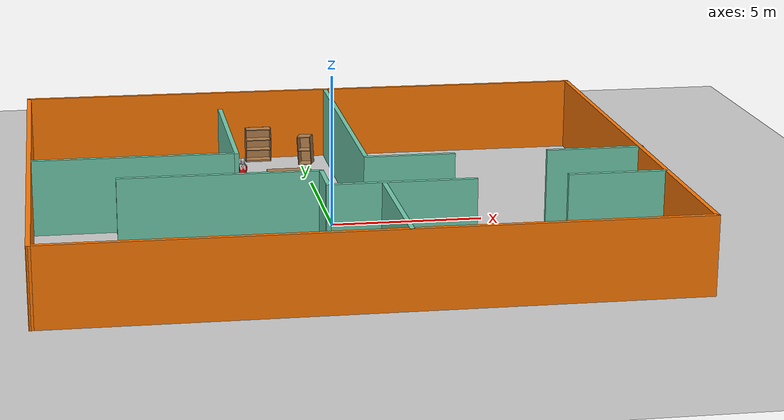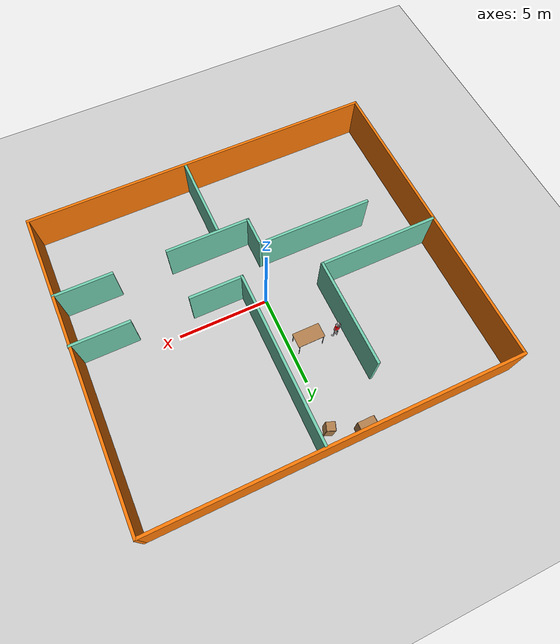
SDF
<sdf version="1.6">
 <world name="default">
  <light name="sun" type="directional">
   <pose>0 0 10 0 -0 0</pose>
   <diffuse>0.8 0.8 0.8 1</diffuse>
   <specular>0.2 0.2 0.2 1</specular>
   <attenuation>
    <range>1000</range>
    <constant>0.9</constant>
    <linear>0.01</linear>
    <quadratic>0.001</quadratic>
   </attenuation>
   <direction>-0.5 0.1 -0.9</direction>
  </light>
  <model name="ground_plane">
   <static>1</static>
   <link name="link">
    <collision name="collision">
     <geometry><plane><normal>0 0 1</normal><size>100 100</size></plane></geometry>
     <surface>
      <contact><collide_bitmask>65535</collide_bitmask></contact>
      <friction><ode><mu>100</mu><mu2>50</mu2></ode></friction>
     </surface>
    </collision>
    <visual name="visual">
     <cast_shadows>0</cast_shadows>
     <geometry><plane><normal>0 0 1</normal><size>100 100</size></plane></geometry>
     <material>
      <script><uri>file://media/materials/scripts/gazebo.material</uri><name>Gazebo/Grey</name></script>
     </material>
    </visual>
   </link>
  </model>
  <gravity>0 0 -9.8</gravity>
  <magnetic_field>6e-06 2.3e-05 -4.2e-05</magnetic_field>
  <atmosphere type="adiabatic"/>
  <physics name="default_physics" default="0" type="ode">
   <max_step_size>0.001</max_step_size>
   <real_time_factor>1</real_time_factor>
   <real_time_update_rate>1000</real_time_update_rate>
  </physics>
  <scene><ambient>0.4 0.4 0.4 1</ambient><background>0.7 0.7 0.7 1</background><shadows>1</shadows></scene>
  <audio><device>default</device></audio>
  <spherical_coordinates>
   <surface_model>EARTH_WGS84</surface_model>
   <latitude_deg>0</latitude_deg>
   <longitude_deg>0</longitude_deg>
   <elevation>0</elevation>
   <heading_deg>0</heading_deg>
  </spherical_coordinates>
  <model name="new_world">
   <pose>0.18496 0.05439 0 0 -0 0</pose>
   <link name="Wall_1">
    <collision name="Wall_1_Collision">
     <geometry><box><size>20 0.15 2.5</size></box></geometry>
     <pose>0 0 1.25 0 -0 0</pose>
    </collision>
    <visual name="Wall_1_Visual">
     <pose>0 0 1.25 0 -0 0</pose>
     <geometry><box><size>20 0.15 2.5</size></box></geometry>
     <material>
      <script><uri>file://media/materials/scripts/gazebo.material</uri><name>Gazebo/Grey</name></script>
      <ambient>0.996078 0.47451 0.0196078 1</ambient>
     </material>
     <meta><layer>0</layer></meta>
    </visual>
    <pose>-0.00542 -8.62551 0 0 -0 0</pose>
   </link>
   <link name="Wall_10">
    <collision name="Wall_10_Collision">
     <geometry><box><size>6 0.15 2.5</size></box></geometry>
     <pose>0 0 1.25 0 -0 0</pose>
    </collision>
    <visual name="Wall_10_Visual">
     <pose>0 0 1.25 0 -0 0</pose>
     <geometry><box><size>6 0.15 2.5</size></box></geometry>
     <material>
      <script><uri>file://media/materials/scripts/gazebo.material</uri><name>Gazebo/Grey</name></script>
      <ambient>0.435294 0.796078 0.67451 1</ambient>
     </material>
     <meta><layer>0</layer></meta>
    </visual>
    <pose>-3.27261 3.1413 0 0 -0 1.5708</pose>
   </link>
   <link name="Wall_12">
    <collision name="Wall_12_Collision">
     <geometry><box><size>9.5 0.15 2.5</size></box></geometry>
     <pose>0 0 1.25 0 -0 0</pose>
    </collision>
    <visual name="Wall_12_Visual">
     <pose>0 0 1.25 0 -0 0</pose>
     <geometry><box><size>9.5 0.15 2.5</size></box></geometry>
     <material>
      <script><uri>file://media/materials/scripts/gazebo.material</uri><name>Gazebo/Grey</name></script>
      <ambient>0.435294 0.796078 0.67451 1</ambient>
     </material>
     <meta><layer>0</layer></meta>
    </visual>
    <pose>0.807667 3.8347 0 0 -0 -1.5708</pose>
   </link>
   <link name="Wall_13">
    <collision name="Wall_13_Collision">
     <geometry><box><size>3 0.15 2.5</size></box></geometry>
     <pose>0 0 1.25 0 -0 0</pose>
    </collision>
    <visual name="Wall_13_Visual">
     <pose>0 0 1.25 0 -0 0</pose>
     <geometry><box><size>3 0.15 2.5</size></box></geometry>
     <material>
      <script><uri>file://media/materials/scripts/gazebo.material</uri><name>Gazebo/Grey</name></script>
      <ambient>0.435294 0.796078 0.67451 1</ambient>
     </material>
     <meta><layer>0</layer></meta>
    </visual>
    <pose>2.23267 -0.840302 0 0 -0 0</pose>
   </link>
   <link name="Wall_15">
    <collision name="Wall_15_Collision">
     <geometry><box><size>3.25 0.15 2.5</size></box></geometry>
     <pose>0 0 1.25 0 -0 0</pose>
    </collision>
    <visual name="Wall_15_Visual">
     <pose>0 0 1.25 0 -0 0</pose>
     <geometry><box><size>3.25 0.15 2.5</size></box></geometry>
     <material>
      <script><uri>file://media/materials/scripts/gazebo.material</uri><name>Gazebo/Grey</name></script>
      <ambient>0.435294 0.796078 0.67451 1</ambient>
     </material>
     <meta><layer>0</layer></meta>
    </visual>
    <pose>8.40063 -0.875996 0 0 -0 3.14159</pose>
   </link>
   <link name="Wall_17">
    <collision name="Wall_17_Collision">
     <geometry><box><size>3.25 0.15 2.5</size></box></geometry>
     <pose>0 0 1.25 0 -0 0</pose>
    </collision>
    <visual name="Wall_17_Visual">
     <pose>0 0 1.25 0 -0 0</pose>
     <geometry><box><size>3.25 0.15 2.5</size></box></geometry>
     <material>
      <script><uri>file://media/materials/scripts/gazebo.material</uri><name>Gazebo/Grey</name></script>
      <ambient>0.435294 0.796078 0.67451 1</ambient>
     </material>
     <meta><layer>0</layer></meta>
    </visual>
    <pose>8.36017 -3.7888 0 0 -0 3.14159</pose>
   </link>
   <link name="Wall_19">
    <collision name="Wall_19_Collision">
     <geometry><box><size>4.75 0.15 2.5</size></box></geometry>
     <pose>0 0 1.25 0 -0 0</pose>
    </collision>
    <visual name="Wall_19_Visual">
     <pose>0 0 1.25 0 -0 0</pose>
     <geometry><box><size>4.75 0.15 2.5</size></box></geometry>
     <material>
      <script><uri>file://media/materials/scripts/gazebo.material</uri><name>Gazebo/Grey</name></script>
      <ambient>0.435294 0.796078 0.67451 1</ambient>
     </material>
     <meta><layer>0</layer></meta>
    </visual>
    <pose>1.46092 -3.82925 0 0 -0 3.14159</pose>
   </link>
   <link name="Wall_2">
    <collision name="Wall_2_Collision">
     <geometry><box><size>17.4011 0.15 2.5</size></box></geometry>
     <pose>0 0 1.25 0 -0 0</pose>
    </collision>
    <visual name="Wall_2_Visual">
     <pose>0 0 1.25 0 -0 0</pose>
     <geometry><box><size>17.4011 0.15 2.5</size></box></geometry>
     <material>
      <script><uri>file://media/materials/scripts/gazebo.material</uri><name>Gazebo/Grey</name></script>
      <ambient>0.996078 0.47451 0.0196078 1</ambient>
     </material>
     <meta><layer>0</layer></meta>
    </visual>
    <pose>9.92019 5.3e-05 0 0 -0 1.57072</pose>
   </link>
   <link name="Wall_20">
    <collision name="Wall_20_Collision">
     <geometry><box><size>1.75 0.15 2.5</size></box></geometry>
     <pose>0 0 1.25 0 -0 0</pose>
    </collision>
    <visual name="Wall_20_Visual">
     <pose>0 0 1.25 0 -0 0</pose>
     <geometry><box><size>1.75 0.15 2.5</size></box></geometry>
     <material>
      <script><uri>file://media/materials/scripts/gazebo.material</uri><name>Gazebo/Grey</name></script>
      <ambient>0.435294 0.796078 0.67451 1</ambient>
     </material>
     <meta><layer>0</layer></meta>
    </visual>
    <pose>-0.839076 -3.02925 0 0 -0 1.5708</pose>
   </link>
   <link name="Wall_22">
    <collision name="Wall_22_Collision">
     <geometry><box><size>6.5 0.15 2.5</size></box></geometry>
     <pose>0 0 1.25 0 -0 0</pose>
    </collision>
    <visual name="Wall_22_Visual">
     <pose>0 0 1.25 0 -0 0</pose>
     <geometry><box><size>6.5 0.15 2.5</size></box></geometry>
     <material>
      <script><uri>file://media/materials/scripts/gazebo.material</uri><name>Gazebo/Grey</name></script>
      <ambient>0.435294 0.796078 0.67451 1</ambient>
     </material>
     <meta><layer>0</layer></meta>
    </visual>
    <pose>-4.01408 -2.22925 0 0 -0 3.14159</pose>
   </link>
   <link name="Wall_24">
    <collision name="Wall_24_Collision">
     <geometry><box><size>4.75 0.15 2.5</size></box></geometry>
     <pose>0 0 1.25 0 -0 0</pose>
    </collision>
    <visual name="Wall_24_Visual">
     <pose>0 0 1.25 0 -0 0</pose>
     <geometry><box><size>4.75 0.15 2.5</size></box></geometry>
     <material>
      <script><uri>file://media/materials/scripts/gazebo.material</uri><name>Gazebo/Grey</name></script>
      <ambient>0.435294 0.796078 0.67451 1</ambient>
     </material>
     <meta><layer>0</layer></meta>
    </visual>
    <pose>0.888578 -6.29016 0 0 -0 -1.5708</pose>
   </link>
   <link name="Wall_4">
    <collision name="Wall_4_Collision">
     <geometry><box><size>20 0.15 2.5</size></box></geometry>
     <pose>0 0 1.25 0 -0 0</pose>
    </collision>
    <visual name="Wall_4_Visual">
     <pose>0 0 1.25 0 -0 0</pose>
     <geometry><box><size>20 0.15 2.5</size></box></geometry>
     <material>
      <script><uri>file://media/materials/scripts/gazebo.material</uri><name>Gazebo/Grey</name></script>
      <ambient>0.996078 0.47451 0.0196078 1</ambient>
     </material>
     <meta><layer>0</layer></meta>
    </visual>
    <pose>-0.004197 8.62561 0 0 -0 3.14159</pose>
   </link>
   <link name="Wall_6">
    <collision name="Wall_6_Collision">
     <geometry><box><size>17.3607 0.15 2.5</size></box></geometry>
     <pose>0 0 1.25 0 -0 0</pose>
    </collision>
    <visual name="Wall_6_Visual">
     <pose>0 0 1.25 0 -0 0</pose>
     <geometry><box><size>17.3607 0.15 2.5</size></box></geometry>
     <material>
      <script><uri>file://media/materials/scripts/gazebo.material</uri><name>Gazebo/Grey</name></script>
      <ambient>0.996078 0.47451 0.0196078 1</ambient>
     </material>
     <meta><layer>0</layer></meta>
    </visual>
    <pose>-9.93986 -0.020175 0 0 -0 -1.57204</pose>
   </link>
   <link name="Wall_9">
    <collision name="Wall_9_Collision">
     <geometry><box><size>6.75 0.15 2.5</size></box></geometry>
     <pose>0 0 1.25 0 -0 0</pose>
    </collision>
    <visual name="Wall_9_Visual">
     <pose>0 0 1.25 0 -0 0</pose>
     <geometry><box><size>6.75 0.15 2.5</size></box></geometry>
     <material>
      <script><uri>file://media/materials/scripts/gazebo.material</uri><name>Gazebo/Grey</name></script>
      <ambient>0.435294 0.796078 0.67451 1</ambient>
     </material>
     <meta><layer>0</layer></meta>
    </visual>
    <pose>-6.57261 0.216304 0 0 -0 0</pose>
   </link>
   <static>1</static>
  </model>
  <model name="table">
   <static>1</static>
   <link name="link">
    <collision name="surface">
     <pose>0 0 1 0 -0 0</pose>
     <geometry><box><size>1.5 0.8 0.03</size></box></geometry>
     <surface><friction><ode><mu>0.6</mu><mu2>0.6</mu2></ode></friction></surface>
    </collision>
    <visual name="visual1">
     <pose>0 0 1 0 -0 0</pose>
     <geometry><box><size>1.5 0.8 0.03</size></box></geometry>
     <material>
      <script><uri>file://media/materials/scripts/gazebo.material</uri><name>Gazebo/Wood</name></script>
     </material>
    </visual>
    <collision name="front_left_leg">
     <pose>0.68 0.38 0.5 0 -0 0</pose>
     <geometry><cylinder><radius>0.02</radius><length>1</length></cylinder></geometry>
    </collision>
    <visual name="front_left_leg">
     <pose>0.68 0.38 0.5 0 -0 0</pose>
     <geometry><cylinder><radius>0.02</radius><length>1</length></cylinder></geometry>
     <material>
      <script><uri>file://media/materials/scripts/gazebo.material</uri><name>Gazebo/Grey</name></script>
     </material>
    </visual>
    <collision name="front_right_leg">
     <pose>0.68 -0.38 0.5 0 -0 0</pose>
     <geometry><cylinder><radius>0.02</radius><length>1</length></cylinder></geometry>
    </collision>
    <visual name="front_right_leg">
     <pose>0.68 -0.38 0.5 0 -0 0</pose>
     <geometry><cylinder><radius>0.02</radius><length>1</length></cylinder></geometry>
     <material>
      <script><uri>file://media/materials/scripts/gazebo.material</uri><name>Gazebo/Grey</name></script>
     </material>
    </visual>
    <collision name="back_right_leg">
     <pose>-0.68 -0.38 0.5 0 -0 0</pose>
     <geometry><cylinder><radius>0.02</radius><length>1</length></cylinder></geometry>
    </collision>
    <visual name="back_right_leg">
     <pose>-0.68 -0.38 0.5 0 -0 0</pose>
     <geometry><cylinder><radius>0.02</radius><length>1</length></cylinder></geometry>
     <material>
      <script><uri>file://media/materials/scripts/gazebo.material</uri><name>Gazebo/Grey</name></script>
     </material>
    </visual>
    <collision name="back_left_leg">
     <pose>-0.68 0.38 0.5 0 -0 0</pose>
     <geometry><cylinder><radius>0.02</radius><length>1</length></cylinder></geometry>
    </collision>
    <visual name="back_left_leg">
     <pose>-0.68 0.38 0.5 0 -0 0</pose>
     <geometry><cylinder><radius>0.02</radius><length>1</length></cylinder></geometry>
     <material>
      <script><uri>file://media/materials/scripts/gazebo.material</uri><name>Gazebo/Grey</name></script>
     </material>
    </visual>
   </link>
   <pose>-1.01354 3.04127 0 0 -0 0</pose>
  </model>
  <model name="bookshelf">
   <static>1</static>
   <link name="link">
    <inertial><mass>1</mass></inertial>
    <collision name="back">
     <pose>0 0.005 0.6 0 -0 0</pose>
     <geometry><box><size>0.9 0.01 1.2</size></box></geometry>
    </collision>
    <visual name="visual1">
     <pose>0 0.005 0.6 0 -0 0</pose>
     <geometry><box><size>0.9 0.01 1.2</size></box></geometry>
     <material>
      <script><uri>file://media/materials/scripts/gazebo.material</uri><name>Gazebo/Wood</name></script>
     </material>
    </visual>
    <collision name="left_side">
     <pose>0.45 -0.195 0.6 0 -0 0</pose>
     <geometry><box><size>0.02 0.4 1.2</size></box></geometry>
    </collision>
    <visual name="visual2">
     <pose>0.45 -0.195 0.6 0 -0 0</pose>
     <geometry><box><size>0.02 0.4 1.2</size></box></geometry>
     <material>
      <script><uri>file://media/materials/scripts/gazebo.material</uri><name>Gazebo/Wood</name></script>
     </material>
    </visual>
    <collision name="right_side">
     <pose>-0.45 -0.195 0.6 0 -0 0</pose>
     <geometry><box><size>0.02 0.4 1.2</size></box></geometry>
    </collision>
    <visual name="visual3">
     <pose>-0.45 -0.195 0.6 0 -0 0</pose>
     <geometry><box><size>0.02 0.4 1.2</size></box></geometry>
     <material>
      <script><uri>file://media/materials/scripts/gazebo.material</uri><name>Gazebo/Wood</name></script>
     </material>
    </visual>
    <collision name="bottom">
     <pose>0 -0.195 0.03 0 -0 0</pose>
     <geometry><box><size>0.88 0.4 0.06</size></box></geometry>
    </collision>
    <visual name="visual4">
     <pose>0 -0.195 0.03 0 -0 0</pose>
     <geometry><box><size>0.88 0.4 0.06</size></box></geometry>
     <material>
      <script><uri>file://media/materials/scripts/gazebo.material</uri><name>Gazebo/Wood</name></script>
     </material>
    </visual>
    <collision name="top">
     <pose>0 -0.195 1.19 0 -0 0</pose>
     <geometry><box><size>0.88 0.4 0.02</size></box></geometry>
    </collision>
    <visual name="visual5">
     <pose>0 -0.195 1.19 0 -0 0</pose>
     <geometry><box><size>0.88 0.4 0.02</size></box></geometry>
     <material>
      <script><uri>file://media/materials/scripts/gazebo.material</uri><name>Gazebo/Wood</name></script>
     </material>
    </visual>
    <collision name="low_shelf">
     <pose>0 -0.195 0.43 0 -0 0</pose>
     <geometry><box><size>0.88 0.4 0.02</size></box></geometry>
    </collision>
    <visual name="visual6">
     <pose>0 -0.195 0.43 0 -0 0</pose>
     <geometry><box><size>0.88 0.4 0.02</size></box></geometry>
     <material>
      <script><uri>file://media/materials/scripts/gazebo.material</uri><name>Gazebo/Wood</name></script>
     </material>
    </visual>
    <collision name="high_shelf">
     <pose>0 -0.195 0.8 0 -0 0</pose>
     <geometry><box><size>0.88 0.4 0.02</size></box></geometry>
    </collision>
    <visual name="visual7">
     <pose>0 -0.195 0.8 0 -0 0</pose>
     <geometry><box><size>0.88 0.4 0.02</size></box></geometry>
     <material>
      <script><uri>file://media/materials/scripts/gazebo.material</uri><name>Gazebo/Wood</name></script>
     </material>
    </visual>
   </link>
   <pose>-1.5374 8.4785 0 0 -0 0</pose>
  </model>
  <model name="cabinet">
   <static>1</static>
   <link name="cabinet_bottom_plate">
    <inertial>
     <pose>0 0 -1 0 -0 0</pose>
     <inertia><ixx>2.05</ixx><ixy>0</ixy><ixz>0</ixz><iyy>2.05</iyy><iyz>0</iyz><izz>2.05</izz></inertia>
     <mass>25</mass>
    </inertial>
    <collision name="cabinet_bottom_plate_geom">
     <pose>0 0 0.01 0 -0 0</pose>
     <geometry><box><size>0.45 0.45 0.02</size></box></geometry>
    </collision>
    <visual name="cabinet_bottom_plate_geom_visual">
     <pose>0 0 0.01 0 -0 0</pose>
     <geometry><box><size>0.45 0.45 0.02</size></box></geometry>
     <material>
      <script><uri>file://media/materials/scripts/gazebo.material</uri><name>Gazebo/Wood</name></script>
     </material>
    </visual>
    <collision name="cabinet_bottom_plate_geom_cabinet_back_plate">
     <pose>0.235 0 0.51 0 -0 0</pose>
     <geometry><box><size>0.02 0.45 1.02</size></box></geometry>
    </collision>
    <visual name="cabinet_bottom_plate_geom_cabinet_back_plate_visual">
     <pose>0.235 0 0.51 0 -0 0</pose>
     <geometry><box><size>0.02 0.45 1.02</size></box></geometry>
     <material>
      <script><uri>file://media/materials/scripts/gazebo.material</uri><name>Gazebo/Wood</name></script>
     </material>
    </visual>
    <collision name="cabinet_bottom_plate_geom_cabinet_left_plate">
     <pose>0 0.235 0.51 0 -0 0</pose>
     <geometry><box><size>0.45 0.02 1.02</size></box></geometry>
    </collision>
    <visual name="cabinet_bottom_plate_geom_cabinet_left_plate_visual">
     <pose>0 0.235 0.51 0 -0 0</pose>
     <geometry><box><size>0.45 0.02 1.02</size></box></geometry>
     <material>
      <script><uri>file://media/materials/scripts/gazebo.material</uri><name>Gazebo/Wood</name></script>
     </material>
    </visual>
    <collision name="cabinet_bottom_plate_geom_cabinet_middle_plate">
     <pose>0 0 0.51 0 -0 0</pose>
     <geometry><box><size>0.45 0.45 0.02</size></box></geometry>
    </collision>
    <visual name="cabinet_bottom_plate_geom_cabinet_middle_plate_visual">
     <pose>0 0 0.51 0 -0 0</pose>
     <geometry><box><size>0.45 0.45 0.02</size></box></geometry>
     <material>
      <script><uri>file://media/materials/scripts/gazebo.material</uri><name>Gazebo/Wood</name></script>
     </material>
    </visual>
    <collision name="cabinet_bottom_plate_geom_cabinet_right_plate">
     <pose>0 -0.235 0.51 0 -0 0</pose>
     <geometry><box><size>0.45 0.02 1.02</size></box></geometry>
    </collision>
    <visual name="cabinet_bottom_plate_geom_cabinet_right_plate_visual">
     <pose>0 -0.235 0.51 0 -0 0</pose>
     <geometry><box><size>0.45 0.02 1.02</size></box></geometry>
     <material>
      <script><uri>file://media/materials/scripts/gazebo.material</uri><name>Gazebo/Wood</name></script>
     </material>
    </visual>
    <collision name="cabinet_bottom_plate_geom_cabinet_top_plate">
     <pose>0 0 1.01 0 -0 0</pose>
     <geometry><box><size>0.45 0.45 0.02</size></box></geometry>
    </collision>
    <visual name="cabinet_bottom_plate_geom_cabinet_top_plate_visual">
     <pose>0 0 1.01 0 -0 0</pose>
     <geometry><box><size>0.45 0.45 0.02</size></box></geometry>
     <material>
      <script><uri>file://media/materials/scripts/gazebo.material</uri><name>Gazebo/Wood</name></script>
     </material>
    </visual>
   </link>
   <pose>0.159981 7.65134 0 -0.060817 0 1.21025</pose>
  </model>
  <model name="girl_brunette">
   <static>1</static>
   <pose>-2.54017 3.25111 0.000901 1.57 -0 0</pose>
   <link name="defaultModel_0::custom_0">
    <visual name="custom_0_visual">
     <geometry>
      <mesh><uri>model://girl_brunette/girl_brunette/girl_brunette.dae</uri><scale>1 1 1</scale></mesh>
     </geometry>
    </visual>
    <collision name="custom_0_collision">
     <geometry>
      <mesh><uri>model://girl_brunette/girl_brunette/girl_brunette.dae</uri><scale>1 1 1</scale></mesh>
     </geometry>
    </collision>
   </link>
  </model>
 </world>
</sdf>
